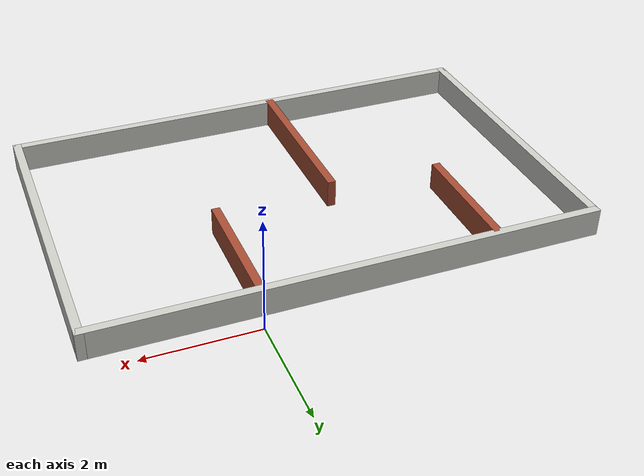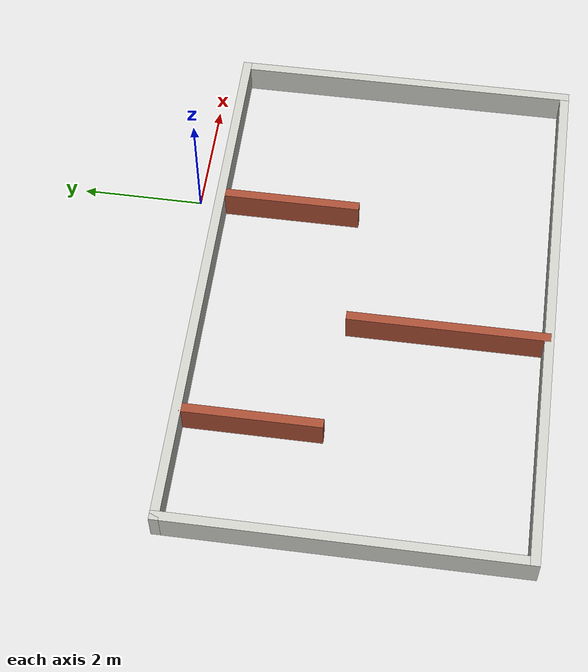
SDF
<?xml version='1.0'?>
<sdf version='1.7'>
  <model name='Maze_2'>
    <pose>-1.675 -3.0275 0 0 -0 0</pose>
    <link name='Wall_1'>
      <collision name='Wall_1_Collision'>
        <geometry>
          <box>
            <size>5.75 0.15 0.5</size>
          </box>
        </geometry>
        <pose>0 0 0.25 0 -0 0</pose>
      </collision>
      <visual name='Wall_1_Visual'>
        <pose>0 0 0.25 0 -0 0</pose>
        <geometry>
          <box>
            <size>5.75 0.15 0.5</size>
          </box>
        </geometry>
        <material>
          <script>
            <uri>file://media/materials/scripts/gazebo.material</uri>
            <name>Gazebo/CeilingTiled</name>
          </script>
          <ambient>1 1 1 1</ambient>
        </material>
        <meta>
          <layer>0</layer>
        </meta>
      </visual>
      <pose>-4.425 -0.1525 0 0 -0 -1.5708</pose>
    </link>
    <link name='Wall_10'>
      <collision name='Wall_10_Collision'>
        <geometry>
          <box>
            <size>2.25 0.15 0.5</size>
          </box>
        </geometry>
        <pose>0 0 0.25 0 -0 0</pose>
      </collision>
      <visual name='Wall_10_Visual'>
        <pose>0 0 0.25 0 -0 0</pose>
        <geometry>
          <box>
            <size>2.25 0.15 0.5</size>
          </box>
        </geometry>
        <material>
          <script>
            <uri>file://media/materials/scripts/gazebo.material</uri>
            <name>Gazebo/Bricks</name>
          </script>
          <ambient>1 1 1 1</ambient>
        </material>
        <meta>
          <layer>0</layer>
        </meta>
      </visual>
      <pose>1.595 1.4475 0 0 -0 -1.5708</pose>
    </link>
    <link name='Wall_2'>
      <collision name='Wall_2_Collision'>
        <geometry>
          <box>
            <size>9 0.15 0.5</size>
          </box>
        </geometry>
        <pose>0 0 0.25 0 -0 0</pose>
      </collision>
      <visual name='Wall_2_Visual'>
        <pose>0 0 0.25 0 -0 0</pose>
        <geometry>
          <box>
            <size>9 0.15 0.5</size>
          </box>
        </geometry>
        <material>
          <script>
            <uri>file://media/materials/scripts/gazebo.material</uri>
            <name>Gazebo/CeilingTiled</name>
          </script>
          <ambient>1 1 1 1</ambient>
        </material>
        <meta>
          <layer>0</layer>
        </meta>
      </visual>
      <pose>0 -2.9525 0 0 -0 0</pose>
    </link>
    <link name='Wall_3'>
      <collision name='Wall_3_Collision'>
        <geometry>
          <box>
            <size>5.75 0.15 0.5</size>
          </box>
        </geometry>
        <pose>0 0 0.25 0 -0 0</pose>
      </collision>
      <visual name='Wall_3_Visual'>
        <pose>0 0 0.25 0 -0 0</pose>
        <geometry>
          <box>
            <size>5.75 0.15 0.5</size>
          </box>
        </geometry>
        <material>
          <script>
            <uri>file://media/materials/scripts/gazebo.material</uri>
            <name>Gazebo/CeilingTiled</name>
          </script>
          <ambient>1 1 1 1</ambient>
        </material>
        <meta>
          <layer>0</layer>
        </meta>
      </visual>
      <pose>4.425 -0.1525 0 0 -0 1.5708</pose>
    </link>
    <link name='Wall_4'>
      <collision name='Wall_4_Collision'>
        <geometry>
          <box>
            <size>9 0.15 0.5</size>
          </box>
        </geometry>
        <pose>0 0 0.25 0 -0 0</pose>
      </collision>
      <visual name='Wall_4_Visual'>
        <pose>0 0 0.25 0 -0 0</pose>
        <geometry>
          <box>
            <size>9 0.15 0.5</size>
          </box>
        </geometry>
        <material>
          <script>
            <uri>file://media/materials/scripts/gazebo.material</uri>
            <name>Gazebo/CeilingTiled</name>
          </script>
          <ambient>1 1 1 1</ambient>
        </material>
        <meta>
          <layer>0</layer>
        </meta>
      </visual>
      <pose>0 2.6475 0 0 -0 3.14159</pose>
    </link>
    <link name='Wall_6'>
      <collision name='Wall_6_Collision'>
        <geometry>
          <box>
            <size>2.25 0.15 0.5</size>
          </box>
        </geometry>
        <pose>0 0 0.25 0 -0 0</pose>
      </collision>
      <visual name='Wall_6_Visual'>
        <pose>0 0 0.25 0 -0 0</pose>
        <geometry>
          <box>
            <size>2.25 0.15 0.5</size>
          </box>
        </geometry>
        <material>
          <script>
            <uri>file://media/materials/scripts/gazebo.material</uri>
            <name>Gazebo/Bricks</name>
          </script>
          <ambient>1 1 1 1</ambient>
        </material>
        <meta>
          <layer>0</layer>
        </meta>
      </visual>
      <pose>-2.575 1.4975 0 0 -0 -1.5708</pose>
    </link>
    <link name='Wall_8'>
      <collision name='Wall_8_Collision'>
        <geometry>
          <box>
            <size>3.25 0.15 0.5</size>
          </box>
        </geometry>
        <pose>0 0 0.25 0 -0 0</pose>
      </collision>
      <visual name='Wall_8_Visual'>
        <pose>0 0 0.25 0 -0 0</pose>
        <geometry>
          <box>
            <size>3.25 0.15 0.5</size>
          </box>
        </geometry>
        <material>
          <script>
            <uri>file://media/materials/scripts/gazebo.material</uri>
            <name>Gazebo/Bricks</name>
          </script>
          <ambient>1 1 1 1</ambient>
        </material>
        <meta>
          <layer>0</layer>
        </meta>
      </visual>
      <pose>-0.575 -1.3525 0 0 -0 -1.5708</pose>
    </link>
    <static>1</static>
  </model>
</sdf>
